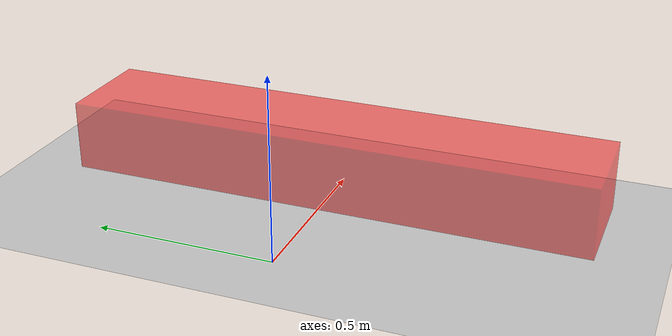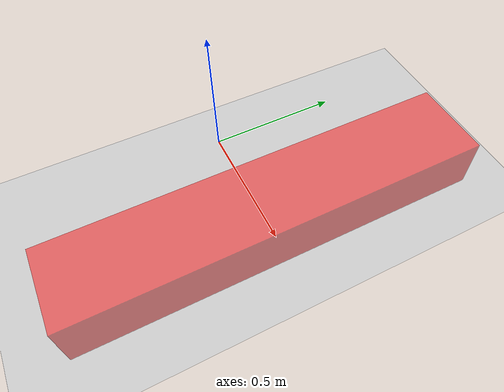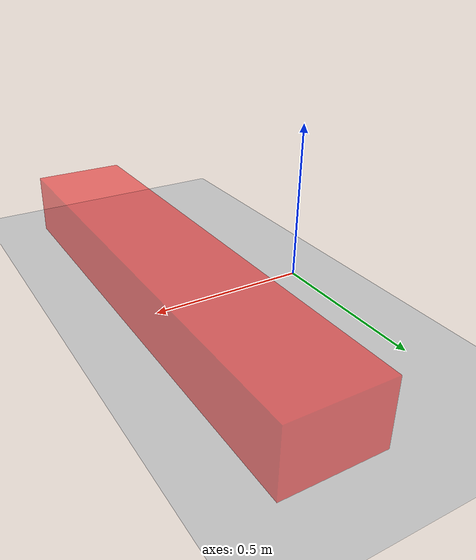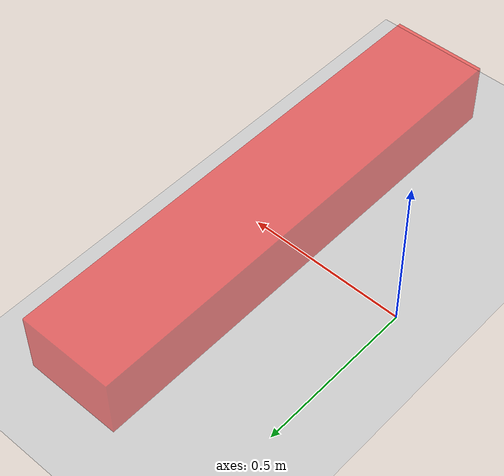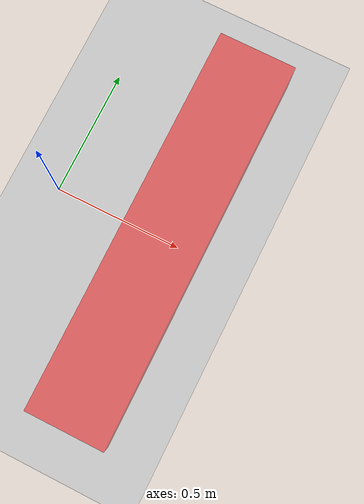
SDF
<?xml version="1.0" ?>
<sdf version="1.6">
  <world name="default">

    <include>
      <uri>model://ground_plane</uri>
    </include>

    <include>
      <uri>model://sun</uri>
    </include>

    <model name='person'>
      <static>true</static>
      <allow_auto_disable>1</allow_auto_disable>
      <pose frame=''>0.45 0 0.1 0 0 0</pose>
      <link name='link'>
        <inertial>
          <mass>40.5</mass>
          <inertia>
            <ixx>12.5</ixx>
            <ixy>0</ixy>
            <ixz>0</ixz>
            <iyy>12.5</iyy>
            <iyz>0</iyz>
            <izz>12.5</izz>
          </inertia>
          <pose frame=''>0 0 0 0 -0 0</pose>
        </inertial>
        <self_collide>0</self_collide>
        <enable_wind>0</enable_wind>
        <kinematic>0</kinematic>
        <pose frame=''>0 0 0 0 -0 0</pose>
        <gravity>1</gravity>
        <visual name='visual'>
          <geometry>
            <box>
              <size>0.3 1.5 0.2</size>
            </box>
          </geometry>
          <material>
            <script>
              <name>Gazebo/Grey</name>
              <uri>file://media/materials/scripts/gazebo.material</uri>
            </script>
            <shader type='pixel'>
              <normal_map>__default__</normal_map>
            </shader>
            <ambient>1 0 0 1</ambient>
            <diffuse>0.7 0.7 0.7 1</diffuse>
            <specular>0.01 0.01 0.01 1</specular>
            <emissive>0 0 0 1</emissive>
          </material>
          <pose frame=''>0 0 0 0 -0 0</pose>
          <transparency>0.5</transparency>
          <cast_shadows>1</cast_shadows>
        </visual>
        <collision name='collision'>
          <laser_retro>0</laser_retro>
          <max_contacts>10</max_contacts>
          <pose frame=''>0 0 0 0 -0 0</pose>
          <geometry>
            <box>
              <size>0.3 1.5 0.2</size>
            </box>
          </geometry>
          <surface>
            <friction>
              <ode>
                <mu>1</mu>
                <mu2>1</mu2>
                <fdir1>0 0 0</fdir1>
                <slip1>0</slip1>
                <slip2>0</slip2>
              </ode>
              <torsional>
                <coefficient>1</coefficient>
                <patch_radius>0</patch_radius>
                <surface_radius>0</surface_radius>
                <use_patch_radius>1</use_patch_radius>
                <ode>
                  <slip>0</slip>
                </ode>
              </torsional>
            </friction>
            <bounce>
              <restitution_coefficient>0</restitution_coefficient>
              <threshold>1e+06</threshold>
            </bounce>
            <contact>
              <collide_without_contact>0</collide_without_contact>
              <collide_without_contact_bitmask>1</collide_without_contact_bitmask>
              <collide_bitmask>1</collide_bitmask>
              <elastic_modulus>20000</elastic_modulus>
              <ode>
                <soft_cfm>0</soft_cfm>
                <soft_erp>0.2</soft_erp>
                <kp>20000</kp>
                <kd>1000</kd>
                <max_vel>0.01</max_vel>
                <min_depth>0</min_depth>
              </ode>
              <bullet>
                <split_impulse>1</split_impulse>
                <split_impulse_penetration_threshold>-0.01</split_impulse_penetration_threshold>
                <soft_cfm>0</soft_cfm>
                <soft_erp>0.2</soft_erp>
                <kp>1e+13</kp>
                <kd>1</kd>
              </bullet>
            </contact>
          </surface>
        </collision>
      </link>
    </model>

    <gravity>0 0 -9.8</gravity>

    <physics type="ode">
      <real_time_update_rate>1000.0</real_time_update_rate>
    </physics>

  </world>
</sdf>
